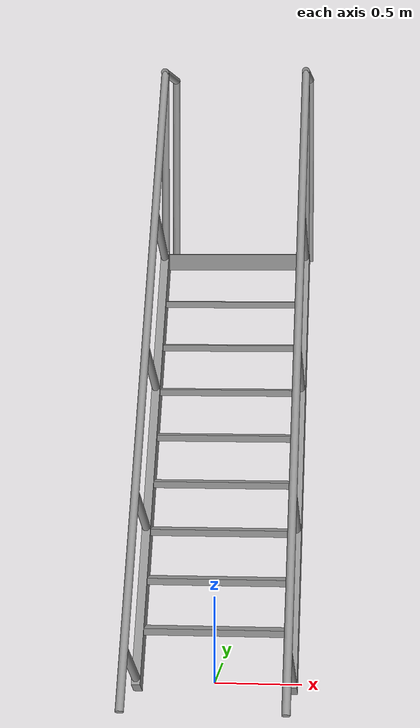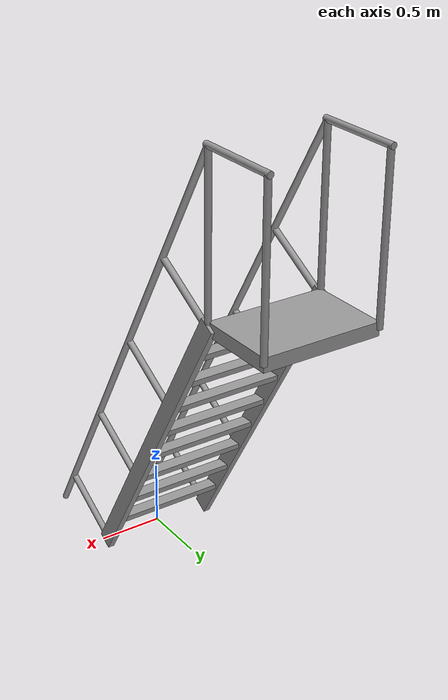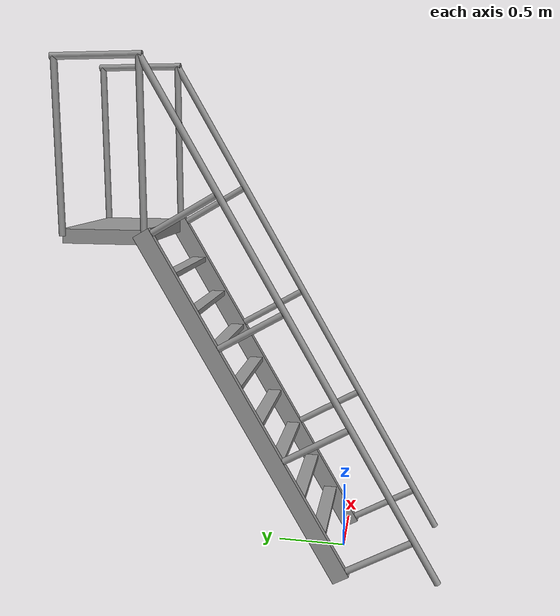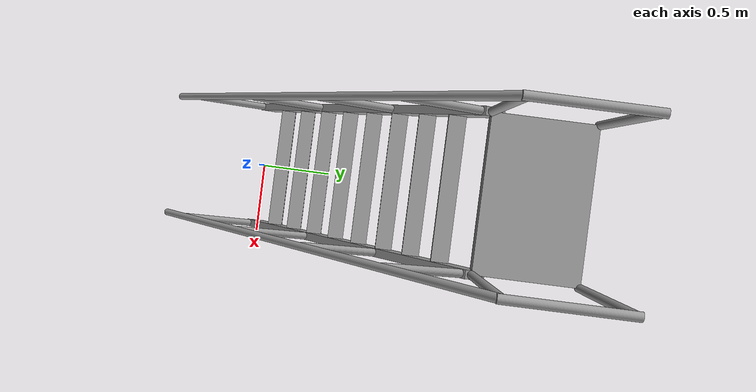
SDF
<?xml version="1.0"?>
<sdf version="1.5">

  <model name= "ladder_60deg_2rails" >
    <static>true</static>
         <link name="step0" >
           <pose>0 0.15396007178390025 0.26666666666666666 0 0 0 </pose>
           <inertial>
             <mass> 9.7548192</mass>
             <inertia>
             <ixx> 0.009571241631672</ixx>
             <iyy> 0.6596303120915761</iyy>
             <izz> 0.666841521540096</izz>
             <ixy>0</ixy>
             <ixz>0</ixz>
             <iyz>0</iyz>
             </inertia>
           </inertial>

           <collision name="collision">
             <geometry>
              <box>
                <size>  0.9  0.1016  0.0381  </size>
              </box>
             </geometry>
           </collision>

          <visual name="visual">
            <geometry>
              <box>
                <size>  0.9  0.1016  0.0381  </size>
              </box>
            </geometry>
            <material>
              <script>
                <uri>file://media/materials/scripts/gazebo.material</uri>
                <name>Gazebo/Grey</name>
              </script>
            </material>
          </visual>
        </link>
         <link name="step1" >
           <pose>0 0.3079201435678005 0.5333333333333333 0 0 0 </pose>
           <inertial>
             <mass> 9.7548192</mass>
             <inertia>
             <ixx> 0.009571241631672</ixx>
             <iyy> 0.6596303120915761</iyy>
             <izz> 0.666841521540096</izz>
             <ixy>0</ixy>
             <ixz>0</ixz>
             <iyz>0</iyz>
             </inertia>
           </inertial>

           <collision name="collision">
             <geometry>
              <box>
                <size>  0.9  0.1016  0.0381  </size>
              </box>
             </geometry>
           </collision>

          <visual name="visual">
            <geometry>
              <box>
                <size>  0.9  0.1016  0.0381  </size>
              </box>
            </geometry>
            <material>
              <script>
                <uri>file://media/materials/scripts/gazebo.material</uri>
                <name>Gazebo/Grey</name>
              </script>
            </material>
          </visual>
        </link>
         <link name="step2" >
           <pose>0 0.46188021535170076 0.8 0 0 0 </pose>
           <inertial>
             <mass> 9.7548192</mass>
             <inertia>
             <ixx> 0.009571241631672</ixx>
             <iyy> 0.6596303120915761</iyy>
             <izz> 0.666841521540096</izz>
             <ixy>0</ixy>
             <ixz>0</ixz>
             <iyz>0</iyz>
             </inertia>
           </inertial>

           <collision name="collision">
             <geometry>
              <box>
                <size>  0.9  0.1016  0.0381  </size>
              </box>
             </geometry>
           </collision>

          <visual name="visual">
            <geometry>
              <box>
                <size>  0.9  0.1016  0.0381  </size>
              </box>
            </geometry>
            <material>
              <script>
                <uri>file://media/materials/scripts/gazebo.material</uri>
                <name>Gazebo/Grey</name>
              </script>
            </material>
          </visual>
        </link>
         <link name="step3" >
           <pose>0 0.615840287135601 1.0666666666666667 0 0 0 </pose>
           <inertial>
             <mass> 9.7548192</mass>
             <inertia>
             <ixx> 0.009571241631672</ixx>
             <iyy> 0.6596303120915761</iyy>
             <izz> 0.666841521540096</izz>
             <ixy>0</ixy>
             <ixz>0</ixz>
             <iyz>0</iyz>
             </inertia>
           </inertial>

           <collision name="collision">
             <geometry>
              <box>
                <size>  0.9  0.1016  0.0381  </size>
              </box>
             </geometry>
           </collision>

          <visual name="visual">
            <geometry>
              <box>
                <size>  0.9  0.1016  0.0381  </size>
              </box>
            </geometry>
            <material>
              <script>
                <uri>file://media/materials/scripts/gazebo.material</uri>
                <name>Gazebo/Grey</name>
              </script>
            </material>
          </visual>
        </link>
         <link name="step4" >
           <pose>0 0.7698003589195013 1.3333333333333333 0 0 0 </pose>
           <inertial>
             <mass> 9.7548192</mass>
             <inertia>
             <ixx> 0.009571241631672</ixx>
             <iyy> 0.6596303120915761</iyy>
             <izz> 0.666841521540096</izz>
             <ixy>0</ixy>
             <ixz>0</ixz>
             <iyz>0</iyz>
             </inertia>
           </inertial>

           <collision name="collision">
             <geometry>
              <box>
                <size>  0.9  0.1016  0.0381  </size>
              </box>
             </geometry>
           </collision>

          <visual name="visual">
            <geometry>
              <box>
                <size>  0.9  0.1016  0.0381  </size>
              </box>
            </geometry>
            <material>
              <script>
                <uri>file://media/materials/scripts/gazebo.material</uri>
                <name>Gazebo/Grey</name>
              </script>
            </material>
          </visual>
        </link>
         <link name="step5" >
           <pose>0 0.9237604307034015 1.6 0 0 0 </pose>
           <inertial>
             <mass> 9.7548192</mass>
             <inertia>
             <ixx> 0.009571241631672</ixx>
             <iyy> 0.6596303120915761</iyy>
             <izz> 0.666841521540096</izz>
             <ixy>0</ixy>
             <ixz>0</ixz>
             <iyz>0</iyz>
             </inertia>
           </inertial>

           <collision name="collision">
             <geometry>
              <box>
                <size>  0.9  0.1016  0.0381  </size>
              </box>
             </geometry>
           </collision>

          <visual name="visual">
            <geometry>
              <box>
                <size>  0.9  0.1016  0.0381  </size>
              </box>
            </geometry>
            <material>
              <script>
                <uri>file://media/materials/scripts/gazebo.material</uri>
                <name>Gazebo/Grey</name>
              </script>
            </material>
          </visual>
        </link>
         <link name="step6" >
           <pose>0 1.0777205024873018 1.8666666666666667 0 0 0 </pose>
           <inertial>
             <mass> 9.7548192</mass>
             <inertia>
             <ixx> 0.009571241631672</ixx>
             <iyy> 0.6596303120915761</iyy>
             <izz> 0.666841521540096</izz>
             <ixy>0</ixy>
             <ixz>0</ixz>
             <iyz>0</iyz>
             </inertia>
           </inertial>

           <collision name="collision">
             <geometry>
              <box>
                <size>  0.9  0.1016  0.0381  </size>
              </box>
             </geometry>
           </collision>

          <visual name="visual">
            <geometry>
              <box>
                <size>  0.9  0.1016  0.0381  </size>
              </box>
            </geometry>
            <material>
              <script>
                <uri>file://media/materials/scripts/gazebo.material</uri>
                <name>Gazebo/Grey</name>
              </script>
            </material>
          </visual>
        </link>
         <link name="step7" >
           <pose>0 1.231680574271202 2.1333333333333333 0 0 0 </pose>
           <inertial>
             <mass> 9.7548192</mass>
             <inertia>
             <ixx> 0.009571241631672</ixx>
             <iyy> 0.6596303120915761</iyy>
             <izz> 0.666841521540096</izz>
             <ixy>0</ixy>
             <ixz>0</ixz>
             <iyz>0</iyz>
             </inertia>
           </inertial>

           <collision name="collision">
             <geometry>
              <box>
                <size>  0.9  0.1016  0.0381  </size>
              </box>
             </geometry>
           </collision>

          <visual name="visual">
            <geometry>
              <box>
                <size>  0.9  0.1016  0.0381  </size>
              </box>
            </geometry>
            <material>
              <script>
                <uri>file://media/materials/scripts/gazebo.material</uri>
                <name>Gazebo/Grey</name>
              </script>
            </material>
          </visual>
        </link>
    <link name="landing">
      <pose>0 1.6856406460551023 2.4 0 0 0 </pose>
        <inertial>
          <mass> 57.607200000000006</mass>
          <inertia>
          <ixx> 1.735184598966</ixx>
          <iyy> 3.8954545989660008</iyy>
          <izz> 5.616702</izz>
          <ixy>0</ixy>
          <ixz>0</ixz>
          <iyz>0</iyz>
          </inertia>
        </inertial>

        <collision name="collision">
          <geometry>
           <box>
             <size> 0.9 0.6 0.1016</size>
           </box>
          </geometry>
        </collision>

        <visual name="visual">
          <geometry>
            <box>
             <size> 0.9 0.6 0.1016</size>
            </box>
          </geometry>
          <material>
            <script>
              <uri>file://media/materials/scripts/gazebo.material</uri>
              <name>Gazebo/Grey</name>
            </script>
          </material>
        </visual>
    </link>

      <link name="left_side_wall" >
        <pose>-0.45 0.6928203230275511 1.2 1.0471975511965976 0 0 </pose>
        <collision name="collision">
          <geometry>
            <box>
              <size> 0.0508  2.851281292110204  0.13 </size>
            </box>
          </geometry>
        </collision>

        <visual name="visual">
          <geometry>
            <box>
              <size> 0.0508  2.851281292110204  0.13 </size>
            </box>
          </geometry>
          <material>
            <script>
              <uri>file://media/materials/scripts/gazebo.material</uri>
              <name>Gazebo/Grey</name>
            </script>
          </material>
        </visual>

      </link>
      <link name="right_side_wall" >
        <pose>0.45 0.6928203230275511 1.2 1.0471975511965976 0 0 </pose>
        <collision name="collision">
          <geometry>
            <box>
              <size> 0.0508  2.851281292110204  0.13 </size>
            </box>
          </geometry>
        </collision>

        <visual name="visual">
          <geometry>
            <box>
              <size> 0.0508  2.851281292110204  0.13 </size>
            </box>
          </geometry>
          <material>
            <script>
              <uri>file://media/materials/scripts/gazebo.material</uri>
              <name>Gazebo/Grey</name>
            </script>
          </material>
        </visual>

      </link>
         <link name="left_railing_long" >
           <pose>-0.45 0.34282032302755117 1.8062177826491068 -0.5235987755982989 0 0 </pose>

            <collision name="collision">
              <geometry>
                <cylinder>
                  <radius>0.02413</radius>
                  <length>4.171281292110204</length>
                </cylinder>
              </geometry>
            </collision>

            <visual name="visual">
              <geometry>
                <cylinder>
                  <radius>0.02413</radius>
                  <length>4.171281292110204</length>
                </cylinder>
              </geometry>
              <material>
                <script>
                  <uri>file://media/materials/scripts/gazebo.material</uri>
                  <name>Gazebo/Grey</name>
                </script>
              </material>
            </visual>
         </link>
              <link name="left_railing_upright0" >
                <pose> -0.45 -0.2749630657015592 0.15875 1.0471975511965976 0 0 </pose>

                <collision name="collision">
                  <geometry>
                    <cylinder>
                      <radius>0.02413</radius>
                      <length>0.5412177826491069</length>
                    </cylinder>
                  </geometry>
                </collision>

                <visual name="visual">
                  <geometry>
                    <cylinder>
                      <radius>0.02413</radius>
                      <length>0.5412177826491069</length>
                    </cylinder>
                  </geometry>
                  <material>
                    <script>
                      <uri>file://media/materials/scripts/gazebo.material</uri>
                      <name>Gazebo/Grey</name>
                    </script>
                  </material>
                </visual>
              </link>
              <link name="left_railing_upright1" >
                <pose> -0.45 0.18691714965014153 0.95875 1.0471975511965976 0 0 </pose>

                <collision name="collision">
                  <geometry>
                    <cylinder>
                      <radius>0.02413</radius>
                      <length>0.5412177826491069</length>
                    </cylinder>
                  </geometry>
                </collision>

                <visual name="visual">
                  <geometry>
                    <cylinder>
                      <radius>0.02413</radius>
                      <length>0.5412177826491069</length>
                    </cylinder>
                  </geometry>
                  <material>
                    <script>
                      <uri>file://media/materials/scripts/gazebo.material</uri>
                      <name>Gazebo/Grey</name>
                    </script>
                  </material>
                </visual>
              </link>
              <link name="left_railing_upright2" >
                <pose> -0.45 0.6487973650018424 1.7587499999999998 1.0471975511965976 0 0 </pose>

                <collision name="collision">
                  <geometry>
                    <cylinder>
                      <radius>0.02413</radius>
                      <length>0.5412177826491069</length>
                    </cylinder>
                  </geometry>
                </collision>

                <visual name="visual">
                  <geometry>
                    <cylinder>
                      <radius>0.02413</radius>
                      <length>0.5412177826491069</length>
                    </cylinder>
                  </geometry>
                  <material>
                    <script>
                      <uri>file://media/materials/scripts/gazebo.material</uri>
                      <name>Gazebo/Grey</name>
                    </script>
                  </material>
                </visual>
              </link>
              <link name="left_railing_upright3" >
                <pose> -0.45 1.1106775803535431 2.55875 1.0471975511965976 0 0 </pose>

                <collision name="collision">
                  <geometry>
                    <cylinder>
                      <radius>0.02413</radius>
                      <length>0.5412177826491069</length>
                    </cylinder>
                  </geometry>
                </collision>

                <visual name="visual">
                  <geometry>
                    <cylinder>
                      <radius>0.02413</radius>
                      <length>0.5412177826491069</length>
                    </cylinder>
                  </geometry>
                  <material>
                    <script>
                      <uri>file://media/materials/scripts/gazebo.material</uri>
                      <name>Gazebo/Grey</name>
                    </script>
                  </material>
                </visual>
              </link>

         <link name="left_railing_landing_top" >

           <pose> -0.45 1.6856406460551023 3.6124355652982136 1.5707963267948966 0 0 </pose>

           <collision name="collision">
             <geometry>
               <cylinder>
                 <radius>0.02413</radius>
                 <length>0.64826</length>
               </cylinder>
             </geometry>
           </collision>

           <visual name="visual">
             <geometry>
               <cylinder>
                 <radius>0.02413</radius>
                 <length>0.64826</length>
               </cylinder>
             </geometry>
             <material>
               <script>
                 <uri>file://media/materials/scripts/gazebo.material</uri>
                 <name>Gazebo/Grey</name>
               </script>
             </material>
           </visual>
         </link>

            <link name="left_railing_landing_upright_0">
              <pose>-0.45 1.3856406460551023 3.0062177826491068 0 0 0</pose>
              <collision name="collision">
                <geometry>
                  <cylinder>
                    <radius>0.02413</radius>
                    <length>1.2124355652982137</length>
                  </cylinder>
                </geometry>
              </collision>

              <visual name="visual">
                <geometry>
                  <cylinder>
                    <radius>0.02413</radius>
                    <length>1.2124355652982137</length>
                  </cylinder>
                </geometry>
                <material>
                  <script>
                    <uri>file://media/materials/scripts/gazebo.material</uri>
                    <name>Gazebo/Grey</name>
                  </script>
                </material>
              </visual>
            </link>
            <link name="left_railing_landing_upright_1">
              <pose>-0.45 1.9856406460551024 3.0062177826491068 0 0 0</pose>
              <collision name="collision">
                <geometry>
                  <cylinder>
                    <radius>0.02413</radius>
                    <length>1.2124355652982137</length>
                  </cylinder>
                </geometry>
              </collision>

              <visual name="visual">
                <geometry>
                  <cylinder>
                    <radius>0.02413</radius>
                    <length>1.2124355652982137</length>
                  </cylinder>
                </geometry>
                <material>
                  <script>
                    <uri>file://media/materials/scripts/gazebo.material</uri>
                    <name>Gazebo/Grey</name>
                  </script>
                </material>
              </visual>
            </link>

         <link name="right_railing_long" >
           <pose>0.45 0.34282032302755117 1.8062177826491068 -0.5235987755982989 0 0 </pose>

            <collision name="collision">
              <geometry>
                <cylinder>
                  <radius>0.02413</radius>
                  <length>4.171281292110204</length>
                </cylinder>
              </geometry>
            </collision>

            <visual name="visual">
              <geometry>
                <cylinder>
                  <radius>0.02413</radius>
                  <length>4.171281292110204</length>
                </cylinder>
              </geometry>
              <material>
                <script>
                  <uri>file://media/materials/scripts/gazebo.material</uri>
                  <name>Gazebo/Grey</name>
                </script>
              </material>
            </visual>
         </link>
              <link name="right_railing_upright0" >
                <pose> 0.45 -0.2749630657015592 0.15875 1.0471975511965976 0 0 </pose>

                <collision name="collision">
                  <geometry>
                    <cylinder>
                      <radius>0.02413</radius>
                      <length>0.5412177826491069</length>
                    </cylinder>
                  </geometry>
                </collision>

                <visual name="visual">
                  <geometry>
                    <cylinder>
                      <radius>0.02413</radius>
                      <length>0.5412177826491069</length>
                    </cylinder>
                  </geometry>
                  <material>
                    <script>
                      <uri>file://media/materials/scripts/gazebo.material</uri>
                      <name>Gazebo/Grey</name>
                    </script>
                  </material>
                </visual>
              </link>
              <link name="right_railing_upright1" >
                <pose> 0.45 0.18691714965014153 0.95875 1.0471975511965976 0 0 </pose>

                <collision name="collision">
                  <geometry>
                    <cylinder>
                      <radius>0.02413</radius>
                      <length>0.5412177826491069</length>
                    </cylinder>
                  </geometry>
                </collision>

                <visual name="visual">
                  <geometry>
                    <cylinder>
                      <radius>0.02413</radius>
                      <length>0.5412177826491069</length>
                    </cylinder>
                  </geometry>
                  <material>
                    <script>
                      <uri>file://media/materials/scripts/gazebo.material</uri>
                      <name>Gazebo/Grey</name>
                    </script>
                  </material>
                </visual>
              </link>
              <link name="right_railing_upright2" >
                <pose> 0.45 0.6487973650018424 1.7587499999999998 1.0471975511965976 0 0 </pose>

                <collision name="collision">
                  <geometry>
                    <cylinder>
                      <radius>0.02413</radius>
                      <length>0.5412177826491069</length>
                    </cylinder>
                  </geometry>
                </collision>

                <visual name="visual">
                  <geometry>
                    <cylinder>
                      <radius>0.02413</radius>
                      <length>0.5412177826491069</length>
                    </cylinder>
                  </geometry>
                  <material>
                    <script>
                      <uri>file://media/materials/scripts/gazebo.material</uri>
                      <name>Gazebo/Grey</name>
                    </script>
                  </material>
                </visual>
              </link>
              <link name="right_railing_upright3" >
                <pose> 0.45 1.1106775803535431 2.55875 1.0471975511965976 0 0 </pose>

                <collision name="collision">
                  <geometry>
                    <cylinder>
                      <radius>0.02413</radius>
                      <length>0.5412177826491069</length>
                    </cylinder>
                  </geometry>
                </collision>

                <visual name="visual">
                  <geometry>
                    <cylinder>
                      <radius>0.02413</radius>
                      <length>0.5412177826491069</length>
                    </cylinder>
                  </geometry>
                  <material>
                    <script>
                      <uri>file://media/materials/scripts/gazebo.material</uri>
                      <name>Gazebo/Grey</name>
                    </script>
                  </material>
                </visual>
              </link>

         <link name="right_railing_landing_top" >

           <pose> 0.45 1.6856406460551023 3.6124355652982136 1.5707963267948966 0 0 </pose>

           <collision name="collision">
             <geometry>
               <cylinder>
                 <radius>0.02413</radius>
                 <length>0.64826</length>
               </cylinder>
             </geometry>
           </collision>

           <visual name="visual">
             <geometry>
               <cylinder>
                 <radius>0.02413</radius>
                 <length>0.64826</length>
               </cylinder>
             </geometry>
             <material>
               <script>
                 <uri>file://media/materials/scripts/gazebo.material</uri>
                 <name>Gazebo/Grey</name>
               </script>
             </material>
           </visual>
         </link>

            <link name="right_railing_landing_upright_0">
              <pose>0.45 1.3856406460551023 3.0062177826491068 0 0 0</pose>
              <collision name="collision">
                <geometry>
                  <cylinder>
                    <radius>0.02413</radius>
                    <length>1.2124355652982137</length>
                  </cylinder>
                </geometry>
              </collision>

              <visual name="visual">
                <geometry>
                  <cylinder>
                    <radius>0.02413</radius>
                    <length>1.2124355652982137</length>
                  </cylinder>
                </geometry>
                <material>
                  <script>
                    <uri>file://media/materials/scripts/gazebo.material</uri>
                    <name>Gazebo/Grey</name>
                  </script>
                </material>
              </visual>
            </link>
            <link name="right_railing_landing_upright_1">
              <pose>0.45 1.9856406460551024 3.0062177826491068 0 0 0</pose>
              <collision name="collision">
                <geometry>
                  <cylinder>
                    <radius>0.02413</radius>
                    <length>1.2124355652982137</length>
                  </cylinder>
                </geometry>
              </collision>

              <visual name="visual">
                <geometry>
                  <cylinder>
                    <radius>0.02413</radius>
                    <length>1.2124355652982137</length>
                  </cylinder>
                </geometry>
                <material>
                  <script>
                    <uri>file://media/materials/scripts/gazebo.material</uri>
                    <name>Gazebo/Grey</name>
                  </script>
                </material>
              </visual>
            </link>

  </model>
</sdf>
